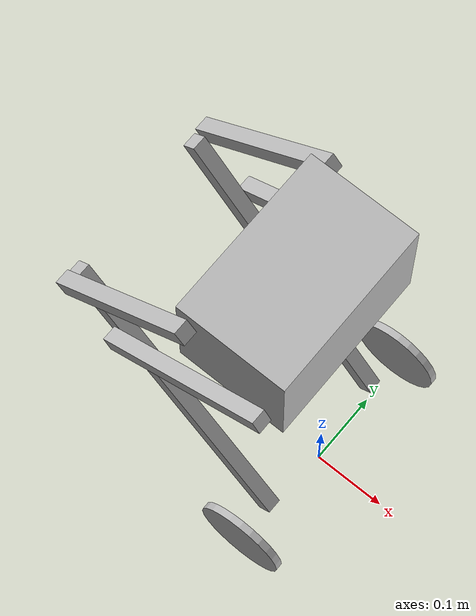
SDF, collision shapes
<?xml version="1.7" ?>
<sdf version="1.7">

  <model name="my_robot">
    <plugin name="libcontrol_plugin" filename="/home/andreap/IIT_CRIS_HHCM/Gazebo_standalone/plugins/my_proto_knee_ISMPC/build/libcontrol_plugin.so"/>

    <pose> 0 0 0 0 0 0 </pose>

    <static>false</static>

    <link name='left_wheel'>
          <pose> 0 0.11666666666666668 0.06 0 0 0 </pose>
          <inertial>
            <pose>0 0 0 0 0 0 </pose>
            <mass>0.3</mass>
            <inertia>
              <ixx>0.0005</ixx>
              <ixy>0</ixy>
              <ixz>0</ixz>
              <iyy>0.001</iyy>
              <iyz>0</iyz>
              <izz>0.0005</izz>
            </inertia>
          </inertial>
          <collision name='collision'>
            <max_contacts> 10 </max_contacts>
            <pose>0 0.04 0 1.5707963267948966 0 0  </pose>
            <geometry>
              <cylinder>
                <radius>0.06 </radius>
                <length>0.01</length>
              </cylinder>
            </geometry>
            <surface>
              <friction>
                <ode>
                  <mu>0.5</mu>
                  <mu2>0.5</mu2>
                </ode>
                <bullet>
                  <friction>0.5</friction>
                  <friction2>0.5</friction2>
                </bullet>

              </friction>

              <contact>
                <ode>
                  <kp>1000000 </kp>
                  <kd>1</kd>
                </ode>
                <bullet>
                  <kp>1000000</kp>
                  <kd>1</kd>
                </bullet>
              </contact>
            </surface>
          </collision>

          <visual name='visual'>
            <pose>0 0.042 0 0 0 1.5707963267948966</pose>

            <geometry>
              <mesh>
                <uri>model://my_robot_knee/meshes/wheel.dae</uri>
              </mesh>
            </geometry>
          </visual>
    </link>

    <link name='left_ah_link'>
        <pose relative_to='left_wheel'> -0.14009301436927907 -0.015 0.1792489813776607 0 -2.234188956850584 0 </pose>
        <inertial>
          <pose>0 0 0 0 0 0 </pose>
          <mass>0.29483999999999994</mass>
          <inertia>
            <ixx>1.9655999999999996e-05</ixx>
            <ixy>0.0</ixy>
            <ixz>0.0</ixz>
            <iyy>0.005096432249999998</iyy>
            <iyz>0.0</iyz>
            <izz>0.005096432249999998</izz>
          </inertia>
        </inertial>
        <collision name='collision'>
          <pose>0 0 0 0 0 0  </pose>
          <geometry>
            <box>
              <size> 0.45499999999999996 0.02 0.02 </size>
            </box>
          </geometry>
        </collision>
        <visual name='visual'>
        <pose>-0.227 0 0 0 0 1.5707963267948966  </pose>
          <geometry>
              <mesh>
                <uri>model://my_robot_knee/meshes/ah_bar_link_and_actuator.dae</uri>
              </mesh>
          </geometry>
        </visual>
    </link>

      <link name='left_d_link'>
        <pose relative_to='left_ah_link'> 0.10966461016744583 0.02 -0.12675132689451746 0 1.7105901812522852 0 </pose>
        <inertial>
          <pose>0 0 0 0 0 0 </pose>
          <mass>0.165888</mass>
          <inertia>
            <ixx>1.10592e-05</ixx>
            <ixy>0.0</ixy>
            <ixz>0.0</ixz>
            <iyy>0.000911499264</iyy>
            <iyz>0.0</iyz>
            <izz>0.000911499264</izz>
          </inertia>
        </inertial>
        <collision name='collision'>
          <pose>0 0 0 0 0 0  </pose>
          <geometry>
            <box>
              <size> 0.256 0.02 0.02 </size>
            </box>
          </geometry>
        </collision>
        <visual name='visual'>
        <pose>0 0 0 0 0 1.5707963267948966  </pose>
          <geometry>
              <mesh>
                <uri>model://my_robot_knee/meshes/bar_d_link.dae</uri>
              </mesh>
          </geometry>
        </visual>
    </link>

    <link name='left_c_link'>
      <pose relative_to='left_ah_link'> 0.23162568522897206 0.02 -0.11792785388275087 0 1.5358257652694682 0 </pose>
      <inertial>
        <pose>0 0 0 0 0 0 </pose>
        <mass>0.15292799999999998</mass>
        <inertia>
          <ixx>1.0195199999999999e-05</ixx>
          <ixy>0.0</ixy>
          <ixz>0.0</ixz>
          <iyy>0.0007148874239999998</iyy>
          <iyz>0.0</iyz>
          <izz>0.0007148874239999998</izz>
        </inertia>
      </inertial>
      <collision name='collision'>
        <pose>0 0 0 0 0 0  </pose>
        <geometry>
          <box>
            <size> 0.236 0.02 0.02 </size>
          </box>
        </geometry>
      </collision>
      <visual name='visual'>
        <pose>0 0 0 0 0 1.5707963267948966  </pose>
          <geometry>
              <mesh>
                <uri>model://my_robot_knee/meshes/bar_c_link.dae</uri>
              </mesh>
          </geometry>
        </visual>
    </link>

    <link name='right_wheel'>
          <max_contacts> 10 </max_contacts>
          <pose> 0 -0.11666666666666668 0.06 0 0 0 </pose>
          <inertial>
            <pose>0 0 0 0 0 0 </pose>
            <mass>0.3</mass>
            <inertia>
              <ixx>0.0005</ixx>
              <ixy>0</ixy>
              <ixz>0</ixz>
              <iyy>0.001</iyy>
              <iyz>0</iyz>
              <izz>0.0005</izz>
            </inertia>
          </inertial>
          <collision name='collision'>
            <pose>0 -0.04 0 1.5707963267948966 0 0  </pose>
            <geometry>
              <cylinder>
                <radius>0.06 </radius>
                <length>0.01</length>
              </cylinder>
            </geometry>
            <surface>
              <friction>
                <ode>
                  <mu>0.5</mu>
                  <mu2>0.5</mu2>
                </ode>
                <bullet>
                  <friction>0.5</friction>
                  <friction2>0.5</friction2>
                </bullet>
              </friction>
              <contact>
                <ode>
                  <kp>1000000</kp>
                  <kd>1</kd>
                </ode>
                <bullet>
                  <kp>1000000</kp>
                  <kd>1</kd>
                </bullet>
              </contact>
            </surface>
          </collision>

          <visual name='visual'>
            <pose>0 -0.042 0 0 0 -1.5707963267948966</pose>

            <geometry>
              <mesh>
                <uri>model://my_robot_knee/meshes/wheel.dae</uri>
              </mesh>
            </geometry>
          </visual>
    </link>

    <link name='right_ah_link'>
          <pose relative_to='right_wheel'> -0.14009301436927907 0.015 0.1792489813776607 0 -2.234188956850584 0 </pose>
          <inertial>
            <pose>0 0 0 0 0 0 </pose>
            <mass>0.29483999999999994</mass>
            <inertia>
              <ixx>1.9655999999999996e-05</ixx>
              <ixy>0.0</ixy>
              <ixz>0.0</ixz>
              <iyy>0.005096432249999998</iyy>
              <iyz>0.0</iyz>
              <izz>0.005096432249999998</izz>
            </inertia>
          </inertial>
          <collision name='collision'>
            <pose>0 0 0 0 0 0  </pose>
            <geometry>
              <box>
                <size> 0.45499999999999996 0.02 0.02 </size>
              </box>
            </geometry>
          </collision>
          <visual name='visual'>
            <pose>-0.227 0 0 0 3.141592653589793 1.5707963267948966  </pose>
            <geometry>
              <mesh>
                <uri>model://my_robot_knee/meshes/ah_bar_link_and_actuator.dae</uri>
              </mesh>
            </geometry>
        </visual>
    </link>

    <link name='right_d_link'>
        <pose relative_to='right_ah_link'> 0.10966461016744583 -0.02 -0.12675132689451746 0 1.7105901812522852 0 </pose>
        <inertial>
          <pose>0 0 0 0 0 0 </pose>
          <mass>0.165888</mass>
          <inertia>
            <ixx>1.10592e-05</ixx>
            <ixy>0.0</ixy>
            <ixz>0.0</ixz>
            <iyy>0.000911499264</iyy>
            <iyz>0.0</iyz>
            <izz>0.000911499264</izz>
          </inertia>
        </inertial>
        <collision name='collision'>
          <pose>0 0 0 0 0 0  </pose>
          <geometry>
            <box>
              <size> 0.256 0.02 0.02 </size>
            </box>
          </geometry>
      </collision>
      <visual name='visual'>
            <pose>0 0 0 0 0 1.5707963267948966  </pose>
            <geometry>
              <mesh>
                <uri>model://my_robot_knee/meshes/bar_d_link.dae</uri>
              </mesh>
            </geometry>
      </visual>
    </link>

    <link name='right_c_link'>
      <pose relative_to='right_ah_link'> 0.23162568522897206 -0.02 -0.11792785388275087 0 1.5358257652694682 0 </pose>
      <inertial>
        <pose>0 0 0 0 0 0 </pose>
        <mass>0.15292799999999998</mass>
        <inertia>
          <ixx>1.0195199999999999e-05</ixx>
          <ixy>0.0</ixy>
          <ixz>0.0</ixz>
          <iyy>0.0007148874239999998</iyy>
          <iyz>0.0</iyz>
          <izz>0.0007148874239999998</izz>
        </inertia>
      </inertial>
      <collision name='collision'>
        <pose>0 0 0 0 0 0  </pose>
        <geometry>
          <box>
            <size> 0.236 0.02 0.02 </size>
          </box>
        </geometry>
      </collision>
      <visual name='visual'>
            <pose>0 0 0 0 0 1.5707963267948966  </pose>
            <geometry>
              <mesh>
                <uri>model://my_robot_knee/meshes/bar_c_link.dae</uri>
              </mesh>
            </geometry>
        </visual>
    </link>

    <link name='body'>
        <pose relative_to='right_d_link'> 0.10923561923006725 0.12166666666666667 0.07002962240595745 0 0.5235987755982991 0 </pose>
        <inertial>
          <pose> 0.06566574413589875 0 -0.04080266414521867 0 0 0 </pose>
          <mass> 10 </mass>
          <inertia>
            <ixx>0.2</ixx>
            <ixy>0</ixy>
            <ixz>0</ixz>
            <iyy>0.1</iyy>
            <iyz>0</iyz>
            <izz>0.2</izz>
          </inertia>
        </inertial>
        <collision name='collision'>
          <pose>0 0 0 0 0 0</pose>
          <geometry>
            <box>
              <size> 0.145 0.22333333333333336 0.145 </size>
            </box>
          </geometry>
        </collision>
        <visual name='visual'>
        <pose>0 0.09333333333333335 -0.07 0 0 4.71238898038469  </pose>

              <geometry>
              <mesh>
                <uri>model://my_robot_knee/meshes/frame.dae</uri>
              </mesh>
          </geometry>
        </visual>
    </link>

      <joint type="revolute" name="left_wheel_hinge">
        <pose>0 0 0 0 0 0</pose>
        <child>left_wheel</child>
        <parent>left_ah_link</parent>
        <axis>
          <xyz>0 1 0</xyz>
          <dynamics>
          </dynamics>
          <limit>
          </limit>
        </axis>
      </joint>

      <joint type="revolute" name="left_ah_d_hinge">
        <pose>0.12749999999999997 0 0 0 0 0</pose>
        <child>left_ah_link</child>
        <parent>left_d_link</parent>
        <axis>
          <xyz>0 1 0</xyz>
          <dynamics>
          </dynamics>
          <limit>
          </limit>
        </axis>
      </joint>

      <joint type="revolute" name="left_ah_c_hinge">
        <pose>0.22749999999999998 0 0 0 0 0</pose>
        <child>left_ah_link</child>
        <parent>left_c_link</parent>
        <axis>
          <xyz>0 1 0</xyz>
          <dynamics>
            <damping> 0 </damping>
            <spring_reference> 0.4229179171574249 </spring_reference>
            <spring_stiffness> 30.0 </spring_stiffness>
          </dynamics>
          <limit>
          </limit>
        </axis>
    </joint>

    <joint type="revolute" name="right_wheel_hinge">
      <pose>0 0 0 0 0 0</pose>
      <child>right_wheel</child>
      <parent>right_ah_link</parent>
      <axis>
        <xyz>0 1 0</xyz>
        <dynamics>
        </dynamics>
        <limit>
        </limit>
      </axis>
    </joint>

    <joint type="revolute" name="right_ah_d_hinge">
      <pose>0.12749999999999997 0 0 0 0 0</pose>
      <child>right_ah_link</child>
      <parent>right_d_link</parent>
      <axis>
        <xyz>0 1 0</xyz>
        <dynamics>
        </dynamics>
        <limit>
        </limit>
      </axis>
    </joint>

    <joint type="revolute" name="right_ah_c_hinge">
      <pose>0.22749999999999998 0 0 0 0 0</pose>
      <child>right_ah_link</child>
      <parent>right_c_link</parent>
      <axis>
        <xyz>0 1 0</xyz>
        <dynamics>
          <damping> 0 </damping>
          <spring_reference> 0.4229179171574249 </spring_reference>
          <spring_stiffness> 30.0 </spring_stiffness>
        </dynamics>
        <limit>
        </limit>
      </axis>
    </joint>

    <joint type="revolute" name="left_c_body_hinge">
      <pose>0.118 0 0 0 0 0</pose>
      <child>left_c_link</child>
      <parent>body</parent>
      <axis>
        <xyz>0 1 0</xyz>
        <dynamics>
        </dynamics>
        <limit>
        </limit>
      </axis>
    </joint>

    <joint type="revolute" name="left_d_body_hinge">
      <pose>0.128 0 0 0 0 0</pose>
      <child>left_d_link</child>
      <parent>body</parent>
      <axis>
        <xyz>0 1 0</xyz>
        <dynamics>
          <damping> 0 </damping>
        </dynamics>
        <limit>
          <lower> -0.5235987755982989 </lower>
          <upper> 0.22689280275926293 </upper>
          <stiffness> 100000000  </stiffness>
          <dissipation> 1 </dissipation>
        </limit>
      </axis>
    </joint>

    <joint type="revolute" name="right_c_body_hinge">
      <pose>0.118 0 0 0 0 0</pose>
      <child>right_c_link</child>
      <parent>body</parent>
      <axis>
        <xyz>0 1 0</xyz>
        <dynamics>
        </dynamics>
        <limit>
        </limit>
      </axis>
    </joint>

    <joint type="revolute" name="right_d_body_hinge">
      <pose>0.128 0 0 0 0 0</pose>
      <child>right_d_link</child>
      <parent>body</parent>
      <axis>
        <xyz>0 1 0</xyz>
        <dynamics>
          <damping> 0 </damping>
        </dynamics>
        <limit>
          <lower> -0.5235987755982989   </lower>
          <upper> 0.22689280275926293   </upper>
          <stiffness> 100000000  </stiffness>
          <dissipation> 1 </dissipation>
          <effort> 20 </effort>
        </limit>
      </axis>
    </joint>

  </model>
</sdf>
